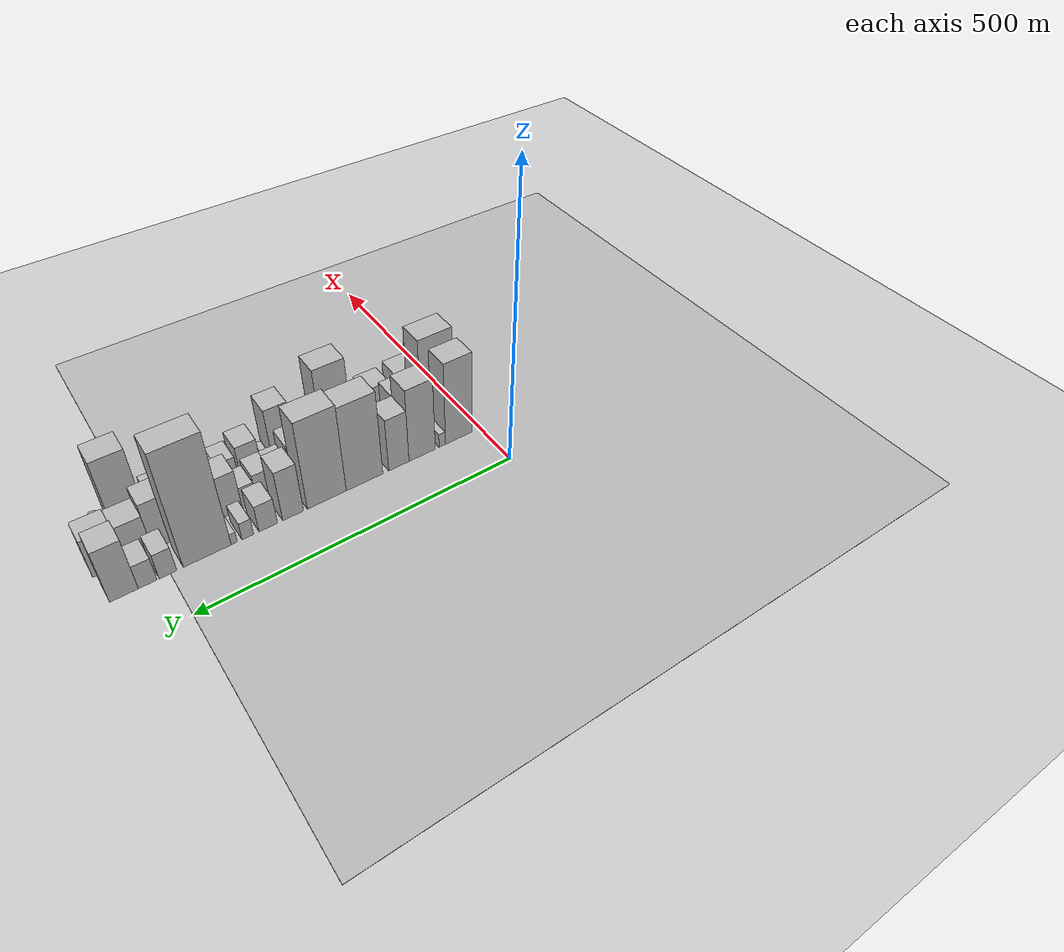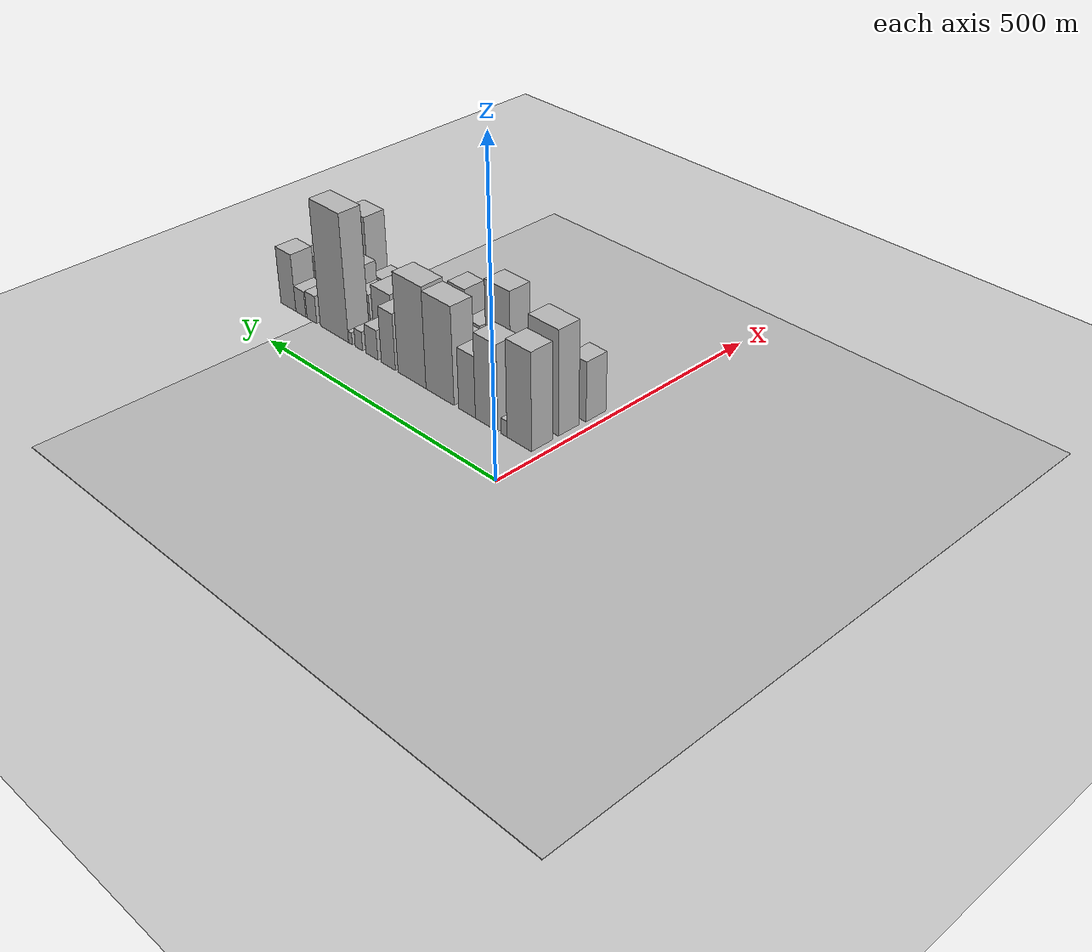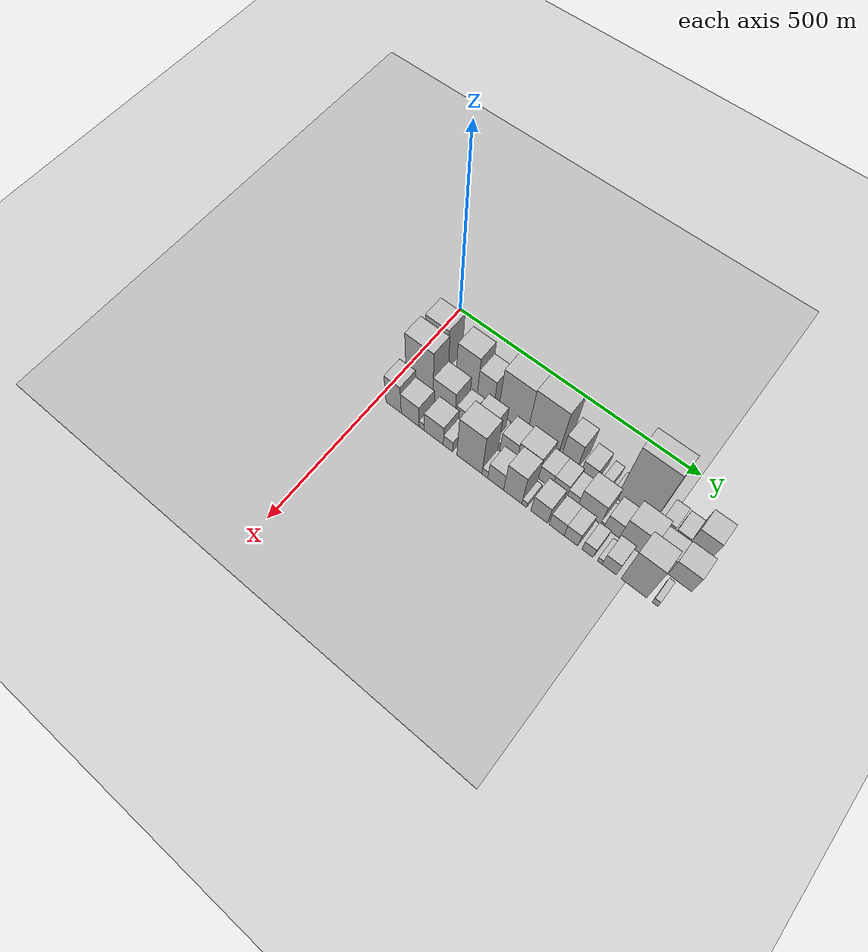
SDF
<sdf version="1.6">
 <world name="default">
  <include><name>ground_plane_1</name><uri>model://HANNAS_ground_plane</uri></include>
  <include>
   <name>ground_plane_2</name>
   <uri>model://HANNAS_ground_plane</uri>
   <pose>100 0 0  0 0 0</pose>
  </include>
  <model name="building_18">
   <static>1</static>
   <pose>100.0000 39.7489 0 0.000000 0.000000 0.000000</pose>
   <link name="link">
    <pose>0 0 79.50 0 0 0</pose>
    <collision name="collision"><geometry><box><size>40.0000 48.9430 159.0000</size></box></geometry></collision>
    <visual name="visual">
     <cast_shadows>0</cast_shadows>
     <geometry><box><size>40.0000 48.9430 159.0000</size></box></geometry>
     <material>
      <script>
       <uri>model://HANNAS_wall/materials/scripts</uri>
       <uri>model://HANNAS_wall/materials/textures</uri>
       <name>vrc/HANNAS_wall</name>
      </script>
     </material>
    </visual>
   </link>
  </model>
  <model name="building_19">
   <static>1</static>
   <pose>100.0000 69.9197 0 0.000000 0.000000 0.000000</pose>
   <link name="link">
    <pose>0 0 13.50 0 0 0</pose>
    <collision name="collision"><geometry><box><size>40.0000 11.3985 27.0000</size></box></geometry></collision>
    <visual name="visual">
     <cast_shadows>0</cast_shadows>
     <geometry><box><size>40.0000 11.3985 27.0000</size></box></geometry>
     <material>
      <script>
       <uri>model://HANNAS_wall/materials/scripts</uri>
       <uri>model://HANNAS_wall/materials/textures</uri>
       <name>vrc/HANNAS_wall</name>
      </script>
     </material>
    </visual>
   </link>
  </model>
  <model name="building_20">
   <static>1</static>
   <pose>100.0000 105.6717 0 0.000000 0.000000 0.000000</pose>
   <link name="link">
    <pose>0 0 70.50 0 0 0</pose>
    <collision name="collision"><geometry><box><size>40.0000 46.1056 141.0000</size></box></geometry></collision>
    <visual name="visual">
     <cast_shadows>0</cast_shadows>
     <geometry><box><size>40.0000 46.1056 141.0000</size></box></geometry>
     <material>
      <script>
       <uri>model://HANNAS_wall/materials/scripts</uri>
       <uri>model://HANNAS_wall/materials/textures</uri>
       <name>vrc/HANNAS_wall</name>
      </script>
     </material>
    </visual>
   </link>
  </model>
  <model name="building_21">
   <static>1</static>
   <pose>100.0000 146.2361 0 0.000000 0.000000 0.000000</pose>
   <link name="link">
    <pose>0 0 51.00 0 0 0</pose>
    <collision name="collision"><geometry><box><size>40.0000 35.0231 102.0000</size></box></geometry></collision>
    <visual name="visual">
     <cast_shadows>0</cast_shadows>
     <geometry><box><size>40.0000 35.0231 102.0000</size></box></geometry>
     <material>
      <script>
       <uri>model://HANNAS_wall/materials/scripts</uri>
       <uri>model://HANNAS_wall/materials/textures</uri>
       <name>vrc/HANNAS_wall</name>
      </script>
     </material>
    </visual>
   </link>
  </model>
  <model name="building_22">
   <static>1</static>
   <pose>100.0000 204.1579 0 0.000000 0.000000 0.000000</pose>
   <link name="link">
    <pose>0 0 81.00 0 0 0</pose>
    <collision name="collision"><geometry><box><size>40.0000 60.8206 162.0000</size></box></geometry></collision>
    <visual name="visual">
     <cast_shadows>0</cast_shadows>
     <geometry><box><size>40.0000 60.8206 162.0000</size></box></geometry>
     <material>
      <script>
       <uri>model://HANNAS_wall/materials/scripts</uri>
       <uri>model://HANNAS_wall/materials/textures</uri>
       <name>vrc/HANNAS_wall</name>
      </script>
     </material>
    </visual>
   </link>
  </model>
  <model name="building_23">
   <static>1</static>
   <pose>100.0000 265.8493 0 0.000000 0.000000 0.000000</pose>
   <link name="link">
    <pose>0 0 84.00 0 0 0</pose>
    <collision name="collision"><geometry><box><size>40.0000 62.5623 168.0000</size></box></geometry></collision>
    <visual name="visual">
     <cast_shadows>0</cast_shadows>
     <geometry><box><size>40.0000 62.5623 168.0000</size></box></geometry>
     <material>
      <script>
       <uri>model://HANNAS_wall/materials/scripts</uri>
       <uri>model://HANNAS_wall/materials/textures</uri>
       <name>vrc/HANNAS_wall</name>
      </script>
     </material>
    </visual>
   </link>
  </model>
  <model name="building_24">
   <static>1</static>
   <pose>100.0000 319.2803 0 0.000000 0.000000 0.000000</pose>
   <link name="link">
    <pose>0 0 48.00 0 0 0</pose>
    <collision name="collision"><geometry><box><size>40.0000 32.2996 96.0000</size></box></geometry></collision>
    <visual name="visual">
     <cast_shadows>0</cast_shadows>
     <geometry><box><size>40.0000 32.2996 96.0000</size></box></geometry>
     <material>
      <script>
       <uri>model://HANNAS_wall/materials/scripts</uri>
       <uri>model://HANNAS_wall/materials/textures</uri>
       <name>vrc/HANNAS_wall</name>
      </script>
     </material>
    </visual>
   </link>
  </model>
  <model name="building_25">
   <static>1</static>
   <pose>100.0000 357.4928 0 0.000000 0.000000 0.000000</pose>
   <link name="link">
    <pose>0 0 25.50 0 0 0</pose>
    <collision name="collision"><geometry><box><size>40.0000 28.1254 51.0000</size></box></geometry></collision>
    <visual name="visual">
     <cast_shadows>0</cast_shadows>
     <geometry><box><size>40.0000 28.1254 51.0000</size></box></geometry>
     <material>
      <script>
       <uri>model://HANNAS_wall/materials/scripts</uri>
       <uri>model://HANNAS_wall/materials/textures</uri>
       <name>vrc/HANNAS_wall</name>
      </script>
     </material>
    </visual>
   </link>
  </model>
  <model name="building_26">
   <static>1</static>
   <pose>100.0000 388.2143 0 0.000000 0.000000 0.000000</pose>
   <link name="link">
    <pose>0 0 16.50 0 0 0</pose>
    <collision name="collision"><geometry><box><size>40.0000 17.3176 33.0000</size></box></geometry></collision>
    <visual name="visual">
     <cast_shadows>0</cast_shadows>
     <geometry><box><size>40.0000 17.3176 33.0000</size></box></geometry>
     <material>
      <script>
       <uri>model://HANNAS_wall/materials/scripts</uri>
       <uri>model://HANNAS_wall/materials/textures</uri>
       <name>vrc/HANNAS_wall</name>
      </script>
     </material>
    </visual>
   </link>
  </model>
  <model name="building_27">
   <static>1</static>
   <pose>100.0000 408.3198 0 0.000000 0.000000 0.000000</pose>
   <link name="link">
    <pose>0 0 10.50 0 0 0</pose>
    <collision name="collision"><geometry><box><size>40.0000 8.8934 21.0000</size></box></geometry></collision>
    <visual name="visual">
     <cast_shadows>0</cast_shadows>
     <geometry><box><size>40.0000 8.8934 21.0000</size></box></geometry>
     <material>
      <script>
       <uri>model://HANNAS_wall/materials/scripts</uri>
       <uri>model://HANNAS_wall/materials/textures</uri>
       <name>vrc/HANNAS_wall</name>
      </script>
     </material>
    </visual>
   </link>
  </model>
  <model name="building_28">
   <static>1</static>
   <pose>100.0000 447.2797 0 0.000000 0.000000 0.000000</pose>
   <link name="link">
    <pose>0 0 108.00 0 0 0</pose>
    <collision name="collision"><geometry><box><size>40.0000 69.0263 216.0000</size></box></geometry></collision>
    <visual name="visual">
     <cast_shadows>0</cast_shadows>
     <geometry><box><size>40.0000 69.0263 216.0000</size></box></geometry>
     <material>
      <script>
       <uri>model://HANNAS_wall/materials/scripts</uri>
       <uri>model://HANNAS_wall/materials/textures</uri>
       <name>vrc/HANNAS_wall</name>
      </script>
     </material>
    </visual>
   </link>
  </model>
  <model name="building_29">
   <static>1</static>
   <pose>100.0000 503.0790 0 0.000000 0.000000 0.000000</pose>
   <link name="link">
    <pose>0 0 24.00 0 0 0</pose>
    <collision name="collision"><geometry><box><size>40.0000 24.5723 48.0000</size></box></geometry></collision>
    <visual name="visual">
     <cast_shadows>0</cast_shadows>
     <geometry><box><size>40.0000 24.5723 48.0000</size></box></geometry>
     <material>
      <script>
       <uri>model://HANNAS_wall/materials/scripts</uri>
       <uri>model://HANNAS_wall/materials/textures</uri>
       <name>vrc/HANNAS_wall</name>
      </script>
     </material>
    </visual>
   </link>
  </model>
  <model name="building_30">
   <static>1</static>
   <pose>100.0000 531.0249 0 0.000000 0.000000 0.000000</pose>
   <link name="link">
    <pose>0 0 22.50 0 0 0</pose>
    <collision name="collision"><geometry><box><size>40.0000 25.3195 45.0000</size></box></geometry></collision>
    <visual name="visual">
     <cast_shadows>0</cast_shadows>
     <geometry><box><size>40.0000 25.3195 45.0000</size></box></geometry>
     <material>
      <script>
       <uri>model://HANNAS_wall/materials/scripts</uri>
       <uri>model://HANNAS_wall/materials/textures</uri>
       <name>vrc/HANNAS_wall</name>
      </script>
     </material>
    </visual>
   </link>
  </model>
  <model name="building_31">
   <static>1</static>
   <pose>100.0000 562.9682 0 0.000000 0.000000 0.000000</pose>
   <link name="link">
    <pose>0 0 49.50 0 0 0</pose>
    <collision name="collision"><geometry><box><size>40.0000 38.5670 99.0000</size></box></geometry></collision>
    <visual name="visual">
     <cast_shadows>0</cast_shadows>
     <geometry><box><size>40.0000 38.5670 99.0000</size></box></geometry>
     <material>
      <script>
       <uri>model://HANNAS_wall/materials/scripts</uri>
       <uri>model://HANNAS_wall/materials/textures</uri>
       <name>vrc/HANNAS_wall</name>
      </script>
     </material>
    </visual>
   </link>
  </model>
  <model name="building_49">
   <static>1</static>
   <pose>152.0000 45.2644 0 0.000000 0.000000 0.000000</pose>
   <link name="link">
    <pose>0 0 85.50 0 0 0</pose>
    <collision name="collision"><geometry><box><size>40.0000 58.7971 171.0000</size></box></geometry></collision>
    <visual name="visual">
     <cast_shadows>0</cast_shadows>
     <geometry><box><size>40.0000 58.7971 171.0000</size></box></geometry>
     <material>
      <script>
       <uri>model://HANNAS_wall/materials/scripts</uri>
       <uri>model://HANNAS_wall/materials/textures</uri>
       <name>vrc/HANNAS_wall</name>
      </script>
     </material>
    </visual>
   </link>
  </model>
  <model name="building_50">
   <static>1</static>
   <pose>152.0000 98.3162 0 0.000000 0.000000 0.000000</pose>
   <link name="link">
    <pose>0 0 43.50 0 0 0</pose>
    <collision name="collision"><geometry><box><size>40.0000 47.3064 87.0000</size></box></geometry></collision>
    <visual name="visual">
     <cast_shadows>0</cast_shadows>
     <geometry><box><size>40.0000 47.3064 87.0000</size></box></geometry>
     <material>
      <script>
       <uri>model://HANNAS_wall/materials/scripts</uri>
       <uri>model://HANNAS_wall/materials/textures</uri>
       <name>vrc/HANNAS_wall</name>
      </script>
     </material>
    </visual>
   </link>
  </model>
  <model name="building_51">
   <static>1</static>
   <pose>152.0000 138.5490 0 0.000000 0.000000 0.000000</pose>
   <link name="link">
    <pose>0 0 24.00 0 0 0</pose>
    <collision name="collision"><geometry><box><size>40.0000 27.1592 48.0000</size></box></geometry></collision>
    <visual name="visual">
     <cast_shadows>0</cast_shadows>
     <geometry><box><size>40.0000 27.1592 48.0000</size></box></geometry>
     <material>
      <script>
       <uri>model://HANNAS_wall/materials/scripts</uri>
       <uri>model://HANNAS_wall/materials/textures</uri>
       <name>vrc/HANNAS_wall</name>
      </script>
     </material>
    </visual>
   </link>
  </model>
  <model name="building_52">
   <static>1</static>
   <pose>152.0000 179.1868 0 0.000000 0.000000 0.000000</pose>
   <link name="link">
    <pose>0 0 37.50 0 0 0</pose>
    <collision name="collision"><geometry><box><size>40.0000 40.1165 75.0000</size></box></geometry></collision>
    <visual name="visual">
     <cast_shadows>0</cast_shadows>
     <geometry><box><size>40.0000 40.1165 75.0000</size></box></geometry>
     <material>
      <script>
       <uri>model://HANNAS_wall/materials/scripts</uri>
       <uri>model://HANNAS_wall/materials/textures</uri>
       <name>vrc/HANNAS_wall</name>
      </script>
     </material>
    </visual>
   </link>
  </model>
  <model name="building_53">
   <static>1</static>
   <pose>152.0000 210.9108 0 0.000000 0.000000 0.000000</pose>
   <link name="link">
    <pose>0 0 13.50 0 0 0</pose>
    <collision name="collision"><geometry><box><size>40.0000 11.3315 27.0000</size></box></geometry></collision>
    <visual name="visual">
     <cast_shadows>0</cast_shadows>
     <geometry><box><size>40.0000 11.3315 27.0000</size></box></geometry>
     <material>
      <script>
       <uri>model://HANNAS_wall/materials/scripts</uri>
       <uri>model://HANNAS_wall/materials/textures</uri>
       <name>vrc/HANNAS_wall</name>
      </script>
     </material>
    </visual>
   </link>
  </model>
  <model name="building_54">
   <static>1</static>
   <pose>152.0000 233.8464 0 0.000000 0.000000 0.000000</pose>
   <link name="link">
    <pose>0 0 34.50 0 0 0</pose>
    <collision name="collision"><geometry><box><size>40.0000 34.5396 69.0000</size></box></geometry></collision>
    <visual name="visual">
     <cast_shadows>0</cast_shadows>
     <geometry><box><size>40.0000 34.5396 69.0000</size></box></geometry>
     <material>
      <script>
       <uri>model://HANNAS_wall/materials/scripts</uri>
       <uri>model://HANNAS_wall/materials/textures</uri>
       <name>vrc/HANNAS_wall</name>
      </script>
     </material>
    </visual>
   </link>
  </model>
  <model name="building_55">
   <static>1</static>
   <pose>152.0000 273.0002 0 0.000000 0.000000 0.000000</pose>
   <link name="link">
    <pose>0 0 40.50 0 0 0</pose>
    <collision name="collision"><geometry><box><size>40.0000 43.7679 81.0000</size></box></geometry></collision>
    <visual name="visual">
     <cast_shadows>0</cast_shadows>
     <geometry><box><size>40.0000 43.7679 81.0000</size></box></geometry>
     <material>
      <script>
       <uri>model://HANNAS_wall/materials/scripts</uri>
       <uri>model://HANNAS_wall/materials/textures</uri>
       <name>vrc/HANNAS_wall</name>
      </script>
     </material>
    </visual>
   </link>
  </model>
  <model name="building_56">
   <static>1</static>
   <pose>152.0000 308.6356 0 0.000000 0.000000 0.000000</pose>
   <link name="link">
    <pose>0 0 27.00 0 0 0</pose>
    <collision name="collision"><geometry><box><size>40.0000 27.5030 54.0000</size></box></geometry></collision>
    <visual name="visual">
     <cast_shadows>0</cast_shadows>
     <geometry><box><size>40.0000 27.5030 54.0000</size></box></geometry>
     <material>
      <script>
       <uri>model://HANNAS_wall/materials/scripts</uri>
       <uri>model://HANNAS_wall/materials/textures</uri>
       <name>vrc/HANNAS_wall</name>
      </script>
     </material>
    </visual>
   </link>
  </model>
  <model name="building_57">
   <static>1</static>
   <pose>152.0000 336.5219 0 0.000000 0.000000 0.000000</pose>
   <link name="link">
    <pose>0 0 27.00 0 0 0</pose>
    <collision name="collision"><geometry><box><size>40.0000 28.2696 54.0000</size></box></geometry></collision>
    <visual name="visual">
     <cast_shadows>0</cast_shadows>
     <geometry><box><size>40.0000 28.2696 54.0000</size></box></geometry>
     <material>
      <script>
       <uri>model://HANNAS_wall/materials/scripts</uri>
       <uri>model://HANNAS_wall/materials/textures</uri>
       <name>vrc/HANNAS_wall</name>
      </script>
     </material>
    </visual>
   </link>
  </model>
  <model name="building_58">
   <static>1</static>
   <pose>152.0000 361.6991 0 0.000000 0.000000 0.000000</pose>
   <link name="link">
    <pose>0 0 21.00 0 0 0</pose>
    <collision name="collision"><geometry><box><size>40.0000 22.0848 42.0000</size></box></geometry></collision>
    <visual name="visual">
     <cast_shadows>0</cast_shadows>
     <geometry><box><size>40.0000 22.0848 42.0000</size></box></geometry>
     <material>
      <script>
       <uri>model://HANNAS_wall/materials/scripts</uri>
       <uri>model://HANNAS_wall/materials/textures</uri>
       <name>vrc/HANNAS_wall</name>
      </script>
     </material>
    </visual>
   </link>
  </model>
  <model name="building_59">
   <static>1</static>
   <pose>152.0000 395.1682 0 0.000000 0.000000 0.000000</pose>
   <link name="link">
    <pose>0 0 39.00 0 0 0</pose>
    <collision name="collision"><geometry><box><size>40.0000 44.8533 78.0000</size></box></geometry></collision>
    <visual name="visual">
     <cast_shadows>0</cast_shadows>
     <geometry><box><size>40.0000 44.8533 78.0000</size></box></geometry>
     <material>
      <script>
       <uri>model://HANNAS_wall/materials/scripts</uri>
       <uri>model://HANNAS_wall/materials/textures</uri>
       <name>vrc/HANNAS_wall</name>
      </script>
     </material>
    </visual>
   </link>
  </model>
  <model name="building_60">
   <static>1</static>
   <pose>152.0000 421.1221 0 0.000000 0.000000 0.000000</pose>
   <link name="link">
    <pose>0 0 7.50 0 0 0</pose>
    <collision name="collision"><geometry><box><size>40.0000 7.0544 15.0000</size></box></geometry></collision>
    <visual name="visual">
     <cast_shadows>0</cast_shadows>
     <geometry><box><size>40.0000 7.0544 15.0000</size></box></geometry>
     <material>
      <script>
       <uri>model://HANNAS_wall/materials/scripts</uri>
       <uri>model://HANNAS_wall/materials/textures</uri>
       <name>vrc/HANNAS_wall</name>
      </script>
     </material>
    </visual>
   </link>
  </model>
  <model name="building_61">
   <static>1</static>
   <pose>152.0000 438.9983 0 0.000000 0.000000 0.000000</pose>
   <link name="link">
    <pose>0 0 28.50 0 0 0</pose>
    <collision name="collision"><geometry><box><size>40.0000 28.6981 57.0000</size></box></geometry></collision>
    <visual name="visual">
     <cast_shadows>0</cast_shadows>
     <geometry><box><size>40.0000 28.6981 57.0000</size></box></geometry>
     <material>
      <script>
       <uri>model://HANNAS_wall/materials/scripts</uri>
       <uri>model://HANNAS_wall/materials/textures</uri>
       <name>vrc/HANNAS_wall</name>
      </script>
     </material>
    </visual>
   </link>
  </model>
  <model name="building_62">
   <static>1</static>
   <pose>152.0000 479.2181 0 0.000000 0.000000 0.000000</pose>
   <link name="link">
    <pose>0 0 45.00 0 0 0</pose>
    <collision name="collision"><geometry><box><size>40.0000 51.7416 90.0000</size></box></geometry></collision>
    <visual name="visual">
     <cast_shadows>0</cast_shadows>
     <geometry><box><size>40.0000 51.7416 90.0000</size></box></geometry>
     <material>
      <script>
       <uri>model://HANNAS_wall/materials/scripts</uri>
       <uri>model://HANNAS_wall/materials/textures</uri>
       <name>vrc/HANNAS_wall</name>
      </script>
     </material>
    </visual>
   </link>
  </model>
  <model name="building_63">
   <static>1</static>
   <pose>152.0000 524.7305 0 0.000000 0.000000 0.000000</pose>
   <link name="link">
    <pose>0 0 34.50 0 0 0</pose>
    <collision name="collision"><geometry><box><size>40.0000 39.2832 69.0000</size></box></geometry></collision>
    <visual name="visual">
     <cast_shadows>0</cast_shadows>
     <geometry><box><size>40.0000 39.2832 69.0000</size></box></geometry>
     <material>
      <script>
       <uri>model://HANNAS_wall/materials/scripts</uri>
       <uri>model://HANNAS_wall/materials/textures</uri>
       <name>vrc/HANNAS_wall</name>
      </script>
     </material>
    </visual>
   </link>
  </model>
  <model name="building_64">
   <static>1</static>
   <pose>152.0000 565.9382 0 0.000000 0.000000 0.000000</pose>
   <link name="link">
    <pose>0 0 36.00 0 0 0</pose>
    <collision name="collision"><geometry><box><size>40.0000 43.1322 72.0000</size></box></geometry></collision>
    <visual name="visual">
     <cast_shadows>0</cast_shadows>
     <geometry><box><size>40.0000 43.1322 72.0000</size></box></geometry>
     <material>
      <script>
       <uri>model://HANNAS_wall/materials/scripts</uri>
       <uri>model://HANNAS_wall/materials/textures</uri>
       <name>vrc/HANNAS_wall</name>
      </script>
     </material>
    </visual>
   </link>
  </model>
  <model name="building_80">
   <static>1</static>
   <pose>204.0000 30.6161 0 0.000000 0.000000 0.000000</pose>
   <link name="link">
    <pose>0 0 49.50 0 0 0</pose>
    <collision name="collision"><geometry><box><size>40.0000 33.7070 99.0000</size></box></geometry></collision>
    <visual name="visual">
     <cast_shadows>0</cast_shadows>
     <geometry><box><size>40.0000 33.7070 99.0000</size></box></geometry>
     <material>
      <script>
       <uri>model://HANNAS_wall/materials/scripts</uri>
       <uri>model://HANNAS_wall/materials/textures</uri>
       <name>vrc/HANNAS_wall</name>
      </script>
     </material>
    </visual>
   </link>
  </model>
  <model name="building_81">
   <static>1</static>
   <pose>204.0000 67.0764 0 0.000000 0.000000 0.000000</pose>
   <link name="link">
    <pose>0 0 37.50 0 0 0</pose>
    <collision name="collision"><geometry><box><size>40.0000 39.2137 75.0000</size></box></geometry></collision>
    <visual name="visual">
     <cast_shadows>0</cast_shadows>
     <geometry><box><size>40.0000 39.2137 75.0000</size></box></geometry>
     <material>
      <script>
       <uri>model://HANNAS_wall/materials/scripts</uri>
       <uri>model://HANNAS_wall/materials/textures</uri>
       <name>vrc/HANNAS_wall</name>
      </script>
     </material>
    </visual>
   </link>
  </model>
  <model name="building_82">
   <static>1</static>
   <pose>204.0000 92.3065 0 0.000000 0.000000 0.000000</pose>
   <link name="link">
    <pose>0 0 12.00 0 0 0</pose>
    <collision name="collision"><geometry><box><size>40.0000 11.2464 24.0000</size></box></geometry></collision>
    <visual name="visual">
     <cast_shadows>0</cast_shadows>
     <geometry><box><size>40.0000 11.2464 24.0000</size></box></geometry>
     <material>
      <script>
       <uri>model://HANNAS_wall/materials/scripts</uri>
       <uri>model://HANNAS_wall/materials/textures</uri>
       <name>vrc/HANNAS_wall</name>
      </script>
     </material>
    </visual>
   </link>
  </model>
  <model name="building_83">
   <static>1</static>
   <pose>204.0000 118.1960 0 0.000000 0.000000 0.000000</pose>
   <link name="link">
    <pose>0 0 34.50 0 0 0</pose>
    <collision name="collision"><geometry><box><size>40.0000 40.5326 69.0000</size></box></geometry></collision>
    <visual name="visual">
     <cast_shadows>0</cast_shadows>
     <geometry><box><size>40.0000 40.5326 69.0000</size></box></geometry>
     <material>
      <script>
       <uri>model://HANNAS_wall/materials/scripts</uri>
       <uri>model://HANNAS_wall/materials/textures</uri>
       <name>vrc/HANNAS_wall</name>
      </script>
     </material>
    </visual>
   </link>
  </model>
  <model name="building_84">
   <static>1</static>
   <pose>204.0000 148.3082 0 0.000000 0.000000 0.000000</pose>
   <link name="link">
    <pose>0 0 19.50 0 0 0</pose>
    <collision name="collision"><geometry><box><size>40.0000 19.6917 39.0000</size></box></geometry></collision>
    <visual name="visual">
     <cast_shadows>0</cast_shadows>
     <geometry><box><size>40.0000 19.6917 39.0000</size></box></geometry>
     <material>
      <script>
       <uri>model://HANNAS_wall/materials/scripts</uri>
       <uri>model://HANNAS_wall/materials/textures</uri>
       <name>vrc/HANNAS_wall</name>
      </script>
     </material>
    </visual>
   </link>
  </model>
  <model name="building_85">
   <static>1</static>
   <pose>204.0000 193.1890 0 0.000000 0.000000 0.000000</pose>
   <link name="link">
    <pose>0 0 73.50 0 0 0</pose>
    <collision name="collision"><geometry><box><size>40.0000 52.0700 147.0000</size></box></geometry></collision>
    <visual name="visual">
     <cast_shadows>0</cast_shadows>
     <geometry><box><size>40.0000 52.0700 147.0000</size></box></geometry>
     <material>
      <script>
       <uri>model://HANNAS_wall/materials/scripts</uri>
       <uri>model://HANNAS_wall/materials/textures</uri>
       <name>vrc/HANNAS_wall</name>
      </script>
     </material>
    </visual>
   </link>
  </model>
  <model name="building_86">
   <static>1</static>
   <pose>204.0000 225.2753 0 0.000000 0.000000 0.000000</pose>
   <link name="link">
    <pose>0 0 13.50 0 0 0</pose>
    <collision name="collision"><geometry><box><size>40.0000 12.1025 27.0000</size></box></geometry></collision>
    <visual name="visual">
     <cast_shadows>0</cast_shadows>
     <geometry><box><size>40.0000 12.1025 27.0000</size></box></geometry>
     <material>
      <script>
       <uri>model://HANNAS_wall/materials/scripts</uri>
       <uri>model://HANNAS_wall/materials/textures</uri>
       <name>vrc/HANNAS_wall</name>
      </script>
     </material>
    </visual>
   </link>
  </model>
  <model name="building_87">
   <static>1</static>
   <pose>204.0000 247.4169 0 0.000000 0.000000 0.000000</pose>
   <link name="link">
    <pose>0 0 31.50 0 0 0</pose>
    <collision name="collision"><geometry><box><size>40.0000 32.1808 63.0000</size></box></geometry></collision>
    <visual name="visual">
     <cast_shadows>0</cast_shadows>
     <geometry><box><size>40.0000 32.1808 63.0000</size></box></geometry>
     <material>
      <script>
       <uri>model://HANNAS_wall/materials/scripts</uri>
       <uri>model://HANNAS_wall/materials/textures</uri>
       <name>vrc/HANNAS_wall</name>
      </script>
     </material>
    </visual>
   </link>
  </model>
  <model name="building_88">
   <static>1</static>
   <pose>204.0000 281.6956 0 0.000000 0.000000 0.000000</pose>
   <link name="link">
    <pose>0 0 55.50 0 0 0</pose>
    <collision name="collision"><geometry><box><size>40.0000 36.3765 111.0000</size></box></geometry></collision>
    <visual name="visual">
     <cast_shadows>0</cast_shadows>
     <geometry><box><size>40.0000 36.3765 111.0000</size></box></geometry>
     <material>
      <script>
       <uri>model://HANNAS_wall/materials/scripts</uri>
       <uri>model://HANNAS_wall/materials/textures</uri>
       <name>vrc/HANNAS_wall</name>
      </script>
     </material>
    </visual>
   </link>
  </model>
  <model name="building_89">
   <static>1</static>
   <pose>204.0000 305.0367 0 0.000000 0.000000 0.000000</pose>
   <link name="link">
    <pose>0 0 10.50 0 0 0</pose>
    <collision name="collision"><geometry><box><size>40.0000 10.3058 21.0000</size></box></geometry></collision>
    <visual name="visual">
     <cast_shadows>0</cast_shadows>
     <geometry><box><size>40.0000 10.3058 21.0000</size></box></geometry>
     <material>
      <script>
       <uri>model://HANNAS_wall/materials/scripts</uri>
       <uri>model://HANNAS_wall/materials/textures</uri>
       <name>vrc/HANNAS_wall</name>
      </script>
     </material>
    </visual>
   </link>
  </model>
  <model name="building_90">
   <static>1</static>
   <pose>204.0000 334.7101 0 0.000000 0.000000 0.000000</pose>
   <link name="link">
    <pose>0 0 33.00 0 0 0</pose>
    <collision name="collision"><geometry><box><size>40.0000 33.0410 66.0000</size></box></geometry></collision>
    <visual name="visual">
     <cast_shadows>0</cast_shadows>
     <geometry><box><size>40.0000 33.0410 66.0000</size></box></geometry>
     <material>
      <script>
       <uri>model://HANNAS_wall/materials/scripts</uri>
       <uri>model://HANNAS_wall/materials/textures</uri>
       <name>vrc/HANNAS_wall</name>
      </script>
     </material>
    </visual>
   </link>
  </model>
  <model name="building_91">
   <static>1</static>
   <pose>204.0000 368.7420 0 0.000000 0.000000 0.000000</pose>
   <link name="link">
    <pose>0 0 25.50 0 0 0</pose>
    <collision name="collision"><geometry><box><size>40.0000 29.0229 51.0000</size></box></geometry></collision>
    <visual name="visual">
     <cast_shadows>0</cast_shadows>
     <geometry><box><size>40.0000 29.0229 51.0000</size></box></geometry>
     <material>
      <script>
       <uri>model://HANNAS_wall/materials/scripts</uri>
       <uri>model://HANNAS_wall/materials/textures</uri>
       <name>vrc/HANNAS_wall</name>
      </script>
     </material>
    </visual>
   </link>
  </model>
  <model name="building_92">
   <static>1</static>
   <pose>204.0000 396.5227 0 0.000000 0.000000 0.000000</pose>
   <link name="link">
    <pose>0 0 25.50 0 0 0</pose>
    <collision name="collision"><geometry><box><size>40.0000 26.5384 51.0000</size></box></geometry></collision>
    <visual name="visual">
     <cast_shadows>0</cast_shadows>
     <geometry><box><size>40.0000 26.5384 51.0000</size></box></geometry>
     <material>
      <script>
       <uri>model://HANNAS_wall/materials/scripts</uri>
       <uri>model://HANNAS_wall/materials/textures</uri>
       <name>vrc/HANNAS_wall</name>
      </script>
     </material>
    </visual>
   </link>
  </model>
  <model name="building_93">
   <static>1</static>
   <pose>204.0000 428.4471 0 0.000000 0.000000 0.000000</pose>
   <link name="link">
    <pose>0 0 19.50 0 0 0</pose>
    <collision name="collision"><geometry><box><size>40.0000 21.3105 39.0000</size></box></geometry></collision>
    <visual name="visual">
     <cast_shadows>0</cast_shadows>
     <geometry><box><size>40.0000 21.3105 39.0000</size></box></geometry>
     <material>
      <script>
       <uri>model://HANNAS_wall/materials/scripts</uri>
       <uri>model://HANNAS_wall/materials/textures</uri>
       <name>vrc/HANNAS_wall</name>
      </script>
     </material>
    </visual>
   </link>
  </model>
  <model name="building_94">
   <static>1</static>
   <pose>204.0000 451.5079 0 0.000000 0.000000 0.000000</pose>
   <link name="link">
    <pose>0 0 9.00 0 0 0</pose>
    <collision name="collision"><geometry><box><size>40.0000 8.8110 18.0000</size></box></geometry></collision>
    <visual name="visual">
     <cast_shadows>0</cast_shadows>
     <geometry><box><size>40.0000 8.8110 18.0000</size></box></geometry>
     <material>
      <script>
       <uri>model://HANNAS_wall/materials/scripts</uri>
       <uri>model://HANNAS_wall/materials/textures</uri>
       <name>vrc/HANNAS_wall</name>
      </script>
     </material>
    </visual>
   </link>
  </model>
  <model name="building_95">
   <static>1</static>
   <pose>204.0000 469.2395 0 0.000000 0.000000 0.000000</pose>
   <link name="link">
    <pose>0 0 25.50 0 0 0</pose>
    <collision name="collision"><geometry><box><size>40.0000 26.6523 51.0000</size></box></geometry></collision>
    <visual name="visual">
     <cast_shadows>0</cast_shadows>
     <geometry><box><size>40.0000 26.6523 51.0000</size></box></geometry>
     <material>
      <script>
       <uri>model://HANNAS_wall/materials/scripts</uri>
       <uri>model://HANNAS_wall/materials/textures</uri>
       <name>vrc/HANNAS_wall</name>
      </script>
     </material>
    </visual>
   </link>
  </model>
  <model name="building_96">
   <static>1</static>
   <pose>204.0000 515.1899 0 0.000000 0.000000 0.000000</pose>
   <link name="link">
    <pose>0 0 72.00 0 0 0</pose>
    <collision name="collision"><geometry><box><size>40.0000 47.2485 144.0000</size></box></geometry></collision>
    <visual name="visual">
     <cast_shadows>0</cast_shadows>
     <geometry><box><size>40.0000 47.2485 144.0000</size></box></geometry>
     <material>
      <script>
       <uri>model://HANNAS_wall/materials/scripts</uri>
       <uri>model://HANNAS_wall/materials/textures</uri>
       <name>vrc/HANNAS_wall</name>
      </script>
     </material>
    </visual>
   </link>
  </model>
  <model name="building_97">
   <static>1</static>
   <pose>204.0000 553.9831 0 0.000000 0.000000 0.000000</pose>
   <link name="link">
    <pose>0 0 12.00 0 0 0</pose>
    <collision name="collision"><geometry><box><size>40.0000 10.3379 24.0000</size></box></geometry></collision>
    <visual name="visual">
     <cast_shadows>0</cast_shadows>
     <geometry><box><size>40.0000 10.3379 24.0000</size></box></geometry>
     <material>
      <script>
       <uri>model://HANNAS_wall/materials/scripts</uri>
       <uri>model://HANNAS_wall/materials/textures</uri>
       <name>vrc/HANNAS_wall</name>
      </script>
     </material>
    </visual>
   </link>
  </model>
 </world>
</sdf>
